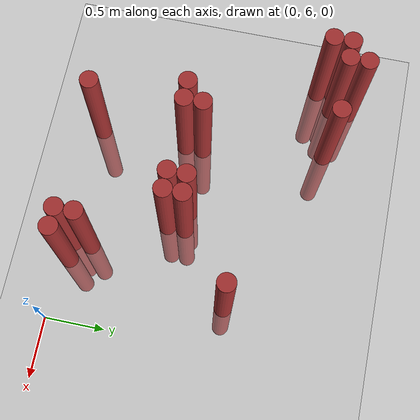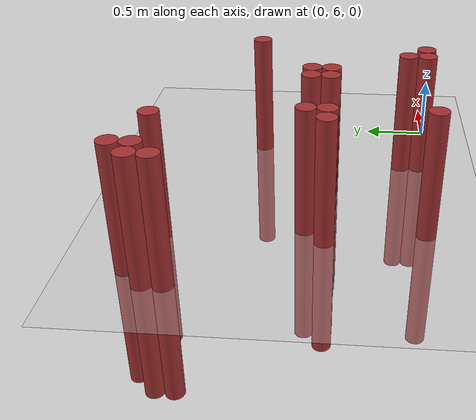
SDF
<sdf version="1.6">
 <world name="default">
  <model name="ground_plane">
   <static>1</static>
   <link name="link">
    <collision name="collision">
     <geometry><plane><normal>0 0 1</normal><size>100 100</size></plane></geometry>
     <surface><friction><ode><mu>100</mu><mu2>50</mu2></ode></friction></surface>
    </collision>
    <visual name="visual">
     <cast_shadows>0</cast_shadows>
     <geometry><plane><normal>0 0 1</normal><size>100 100</size></plane></geometry>
     <material>
      <script><uri>file://media/materials/scripts/gazebo.material</uri><name>Gazebo/Grey</name></script>
     </material>
    </visual>
   </link>
  </model>
  <model name="unit_cylinder_180">
   <static>1</static>
   <pose>-2.475000 7.875000 0.000000 0.000000 0.000000 0.000000</pose>
   <link name="link">
    <inertial>
     <mass>1</mass>
     <inertia><ixx>0.145833</ixx><ixy>0</ixy><ixz>0</ixz><iyy>0.145833</iyy><iyz>0</iyz><izz>0.125</izz></inertia>
    </inertial>
    <collision name="collision">
     <geometry><cylinder><radius>0.075000</radius><length>2</length></cylinder></geometry>
    </collision>
    <visual name="visual">
     <geometry><cylinder><radius>0.075000</radius><length>2</length></cylinder></geometry>
     <material>
      <ambient>0.648000 0.192000 0.192000 1</ambient>
      <diffuse>0.648000 0.192000 0.192000 1</diffuse>
     </material>
     <material>
      <script><name>Gazebo/Grey</name><uri>file://media/materials/scripts/gazebo.material</uri></script>
     </material>
    </visual>
   </link>
  </model>
  <model name="unit_cylinder_181">
   <static>1</static>
   <pose>-2.475000 8.025000 0.000000 0.000000 0.000000 0.000000</pose>
   <link name="link">
    <inertial>
     <mass>1</mass>
     <inertia><ixx>0.145833</ixx><ixy>0</ixy><ixz>0</ixz><iyy>0.145833</iyy><iyz>0</iyz><izz>0.125</izz></inertia>
    </inertial>
    <collision name="collision">
     <geometry><cylinder><radius>0.075000</radius><length>2</length></cylinder></geometry>
    </collision>
    <visual name="visual">
     <geometry><cylinder><radius>0.075000</radius><length>2</length></cylinder></geometry>
     <material>
      <ambient>0.648000 0.192000 0.192000 1</ambient>
      <diffuse>0.648000 0.192000 0.192000 1</diffuse>
     </material>
     <material>
      <script><name>Gazebo/Grey</name><uri>file://media/materials/scripts/gazebo.material</uri></script>
     </material>
    </visual>
   </link>
  </model>
  <model name="unit_cylinder_185">
   <static>1</static>
   <pose>-2.325000 8.025000 0.000000 0.000000 0.000000 0.000000</pose>
   <link name="link">
    <inertial>
     <mass>1</mass>
     <inertia><ixx>0.145833</ixx><ixy>0</ixy><ixz>0</ixz><iyy>0.145833</iyy><iyz>0</iyz><izz>0.125</izz></inertia>
    </inertial>
    <collision name="collision">
     <geometry><cylinder><radius>0.075000</radius><length>2</length></cylinder></geometry>
    </collision>
    <visual name="visual">
     <geometry><cylinder><radius>0.075000</radius><length>2</length></cylinder></geometry>
     <material>
      <ambient>0.648000 0.192000 0.192000 1</ambient>
      <diffuse>0.648000 0.192000 0.192000 1</diffuse>
     </material>
     <material>
      <script><name>Gazebo/Grey</name><uri>file://media/materials/scripts/gazebo.material</uri></script>
     </material>
    </visual>
   </link>
  </model>
  <model name="unit_cylinder_186">
   <static>1</static>
   <pose>-2.325000 8.175000 0.000000 0.000000 0.000000 0.000000</pose>
   <link name="link">
    <inertial>
     <mass>1</mass>
     <inertia><ixx>0.145833</ixx><ixy>0</ixy><ixz>0</ixz><iyy>0.145833</iyy><iyz>0</iyz><izz>0.125</izz></inertia>
    </inertial>
    <collision name="collision">
     <geometry><cylinder><radius>0.075000</radius><length>2</length></cylinder></geometry>
    </collision>
    <visual name="visual">
     <geometry><cylinder><radius>0.075000</radius><length>2</length></cylinder></geometry>
     <material>
      <ambient>0.648000 0.192000 0.192000 1</ambient>
      <diffuse>0.648000 0.192000 0.192000 1</diffuse>
     </material>
     <material>
      <script><name>Gazebo/Grey</name><uri>file://media/materials/scripts/gazebo.material</uri></script>
     </material>
    </visual>
   </link>
  </model>
  <model name="unit_cylinder_198">
   <static>1</static>
   <pose>-1.875000 6.825000 0.000000 0.000000 0.000000 0.000000</pose>
   <link name="link">
    <inertial>
     <mass>1</mass>
     <inertia><ixx>0.145833</ixx><ixy>0</ixy><ixz>0</ixz><iyy>0.145833</iyy><iyz>0</iyz><izz>0.125</izz></inertia>
    </inertial>
    <collision name="collision">
     <geometry><cylinder><radius>0.075000</radius><length>2</length></cylinder></geometry>
    </collision>
    <visual name="visual">
     <geometry><cylinder><radius>0.075000</radius><length>2</length></cylinder></geometry>
     <material>
      <ambient>0.648000 0.192000 0.192000 1</ambient>
      <diffuse>0.648000 0.192000 0.192000 1</diffuse>
     </material>
     <material>
      <script><name>Gazebo/Grey</name><uri>file://media/materials/scripts/gazebo.material</uri></script>
     </material>
    </visual>
   </link>
  </model>
  <model name="unit_cylinder_199">
   <static>1</static>
   <pose>-1.875000 8.025000 0.000000 0.000000 0.000000 0.000000</pose>
   <link name="link">
    <inertial>
     <mass>1</mass>
     <inertia><ixx>0.145833</ixx><ixy>0</ixy><ixz>0</ixz><iyy>0.145833</iyy><iyz>0</iyz><izz>0.125</izz></inertia>
    </inertial>
    <collision name="collision">
     <geometry><cylinder><radius>0.075000</radius><length>2</length></cylinder></geometry>
    </collision>
    <visual name="visual">
     <geometry><cylinder><radius>0.075000</radius><length>2</length></cylinder></geometry>
     <material>
      <ambient>0.648000 0.192000 0.192000 1</ambient>
      <diffuse>0.648000 0.192000 0.192000 1</diffuse>
     </material>
     <material>
      <script><name>Gazebo/Grey</name><uri>file://media/materials/scripts/gazebo.material</uri></script>
     </material>
    </visual>
   </link>
  </model>
  <model name="unit_cylinder_202">
   <static>1</static>
   <pose>-1.725000 6.075000 0.000000 0.000000 0.000000 0.000000</pose>
   <link name="link">
    <inertial>
     <mass>1</mass>
     <inertia><ixx>0.145833</ixx><ixy>0</ixy><ixz>0</ixz><iyy>0.145833</iyy><iyz>0</iyz><izz>0.125</izz></inertia>
    </inertial>
    <collision name="collision">
     <geometry><cylinder><radius>0.075000</radius><length>2</length></cylinder></geometry>
    </collision>
    <visual name="visual">
     <geometry><cylinder><radius>0.075000</radius><length>2</length></cylinder></geometry>
     <material>
      <ambient>0.648000 0.192000 0.192000 1</ambient>
      <diffuse>0.648000 0.192000 0.192000 1</diffuse>
     </material>
     <material>
      <script><name>Gazebo/Grey</name><uri>file://media/materials/scripts/gazebo.material</uri></script>
     </material>
    </visual>
   </link>
  </model>
  <model name="unit_cylinder_203">
   <static>1</static>
   <pose>-1.725000 6.825000 0.000000 0.000000 0.000000 0.000000</pose>
   <link name="link">
    <inertial>
     <mass>1</mass>
     <inertia><ixx>0.145833</ixx><ixy>0</ixy><ixz>0</ixz><iyy>0.145833</iyy><iyz>0</iyz><izz>0.125</izz></inertia>
    </inertial>
    <collision name="collision">
     <geometry><cylinder><radius>0.075000</radius><length>2</length></cylinder></geometry>
    </collision>
    <visual name="visual">
     <geometry><cylinder><radius>0.075000</radius><length>2</length></cylinder></geometry>
     <material>
      <ambient>0.648000 0.192000 0.192000 1</ambient>
      <diffuse>0.648000 0.192000 0.192000 1</diffuse>
     </material>
     <material>
      <script><name>Gazebo/Grey</name><uri>file://media/materials/scripts/gazebo.material</uri></script>
     </material>
    </visual>
   </link>
  </model>
  <model name="unit_cylinder_204">
   <static>1</static>
   <pose>-1.725000 6.975000 0.000000 0.000000 0.000000 0.000000</pose>
   <link name="link">
    <inertial>
     <mass>1</mass>
     <inertia><ixx>0.145833</ixx><ixy>0</ixy><ixz>0</ixz><iyy>0.145833</iyy><iyz>0</iyz><izz>0.125</izz></inertia>
    </inertial>
    <collision name="collision">
     <geometry><cylinder><radius>0.075000</radius><length>2</length></cylinder></geometry>
    </collision>
    <visual name="visual">
     <geometry><cylinder><radius>0.075000</radius><length>2</length></cylinder></geometry>
     <material>
      <ambient>0.648000 0.192000 0.192000 1</ambient>
      <diffuse>0.648000 0.192000 0.192000 1</diffuse>
     </material>
     <material>
      <script><name>Gazebo/Grey</name><uri>file://media/materials/scripts/gazebo.material</uri></script>
     </material>
    </visual>
   </link>
  </model>
  <model name="unit_cylinder_214">
   <static>1</static>
   <pose>-1.125000 6.825000 0.000000 0.000000 0.000000 0.000000</pose>
   <link name="link">
    <inertial>
     <mass>1</mass>
     <inertia><ixx>0.145833</ixx><ixy>0</ixy><ixz>0</ixz><iyy>0.145833</iyy><iyz>0</iyz><izz>0.125</izz></inertia>
    </inertial>
    <collision name="collision">
     <geometry><cylinder><radius>0.075000</radius><length>2</length></cylinder></geometry>
    </collision>
    <visual name="visual">
     <geometry><cylinder><radius>0.075000</radius><length>2</length></cylinder></geometry>
     <material>
      <ambient>0.648000 0.192000 0.192000 1</ambient>
      <diffuse>0.648000 0.192000 0.192000 1</diffuse>
     </material>
     <material>
      <script><name>Gazebo/Grey</name><uri>file://media/materials/scripts/gazebo.material</uri></script>
     </material>
    </visual>
   </link>
  </model>
  <model name="unit_cylinder_215">
   <static>1</static>
   <pose>-1.125000 6.975000 0.000000 0.000000 0.000000 0.000000</pose>
   <link name="link">
    <inertial>
     <mass>1</mass>
     <inertia><ixx>0.145833</ixx><ixy>0</ixy><ixz>0</ixz><iyy>0.145833</iyy><iyz>0</iyz><izz>0.125</izz></inertia>
    </inertial>
    <collision name="collision">
     <geometry><cylinder><radius>0.075000</radius><length>2</length></cylinder></geometry>
    </collision>
    <visual name="visual">
     <geometry><cylinder><radius>0.075000</radius><length>2</length></cylinder></geometry>
     <material>
      <ambient>0.648000 0.192000 0.192000 1</ambient>
      <diffuse>0.648000 0.192000 0.192000 1</diffuse>
     </material>
     <material>
      <script><name>Gazebo/Grey</name><uri>file://media/materials/scripts/gazebo.material</uri></script>
     </material>
    </visual>
   </link>
  </model>
  <model name="unit_cylinder_216">
   <static>1</static>
   <pose>-0.975000 6.825000 0.000000 0.000000 0.000000 0.000000</pose>
   <link name="link">
    <inertial>
     <mass>1</mass>
     <inertia><ixx>0.145833</ixx><ixy>0</ixy><ixz>0</ixz><iyy>0.145833</iyy><iyz>0</iyz><izz>0.125</izz></inertia>
    </inertial>
    <collision name="collision">
     <geometry><cylinder><radius>0.075000</radius><length>2</length></cylinder></geometry>
    </collision>
    <visual name="visual">
     <geometry><cylinder><radius>0.075000</radius><length>2</length></cylinder></geometry>
     <material>
      <ambient>0.648000 0.192000 0.192000 1</ambient>
      <diffuse>0.648000 0.192000 0.192000 1</diffuse>
     </material>
     <material>
      <script><name>Gazebo/Grey</name><uri>file://media/materials/scripts/gazebo.material</uri></script>
     </material>
    </visual>
   </link>
  </model>
  <model name="unit_cylinder_217">
   <static>1</static>
   <pose>-0.975000 6.975000 0.000000 0.000000 0.000000 0.000000</pose>
   <link name="link">
    <inertial>
     <mass>1</mass>
     <inertia><ixx>0.145833</ixx><ixy>0</ixy><ixz>0</ixz><iyy>0.145833</iyy><iyz>0</iyz><izz>0.125</izz></inertia>
    </inertial>
    <collision name="collision">
     <geometry><cylinder><radius>0.075000</radius><length>2</length></cylinder></geometry>
    </collision>
    <visual name="visual">
     <geometry><cylinder><radius>0.075000</radius><length>2</length></cylinder></geometry>
     <material>
      <ambient>0.648000 0.192000 0.192000 1</ambient>
      <diffuse>0.648000 0.192000 0.192000 1</diffuse>
     </material>
     <material>
      <script><name>Gazebo/Grey</name><uri>file://media/materials/scripts/gazebo.material</uri></script>
     </material>
    </visual>
   </link>
  </model>
  <model name="unit_cylinder_219">
   <static>1</static>
   <pose>-0.675000 6.075000 0.000000 0.000000 0.000000 0.000000</pose>
   <link name="link">
    <inertial>
     <mass>1</mass>
     <inertia><ixx>0.145833</ixx><ixy>0</ixy><ixz>0</ixz><iyy>0.145833</iyy><iyz>0</iyz><izz>0.125</izz></inertia>
    </inertial>
    <collision name="collision">
     <geometry><cylinder><radius>0.075000</radius><length>2</length></cylinder></geometry>
    </collision>
    <visual name="visual">
     <geometry><cylinder><radius>0.075000</radius><length>2</length></cylinder></geometry>
     <material>
      <ambient>0.648000 0.192000 0.192000 1</ambient>
      <diffuse>0.648000 0.192000 0.192000 1</diffuse>
     </material>
     <material>
      <script><name>Gazebo/Grey</name><uri>file://media/materials/scripts/gazebo.material</uri></script>
     </material>
    </visual>
   </link>
  </model>
  <model name="unit_cylinder_220">
   <static>1</static>
   <pose>-0.675000 6.225000 0.000000 0.000000 0.000000 0.000000</pose>
   <link name="link">
    <inertial>
     <mass>1</mass>
     <inertia><ixx>0.145833</ixx><ixy>0</ixy><ixz>0</ixz><iyy>0.145833</iyy><iyz>0</iyz><izz>0.125</izz></inertia>
    </inertial>
    <collision name="collision">
     <geometry><cylinder><radius>0.075000</radius><length>2</length></cylinder></geometry>
    </collision>
    <visual name="visual">
     <geometry><cylinder><radius>0.075000</radius><length>2</length></cylinder></geometry>
     <material>
      <ambient>0.648000 0.192000 0.192000 1</ambient>
      <diffuse>0.648000 0.192000 0.192000 1</diffuse>
     </material>
     <material>
      <script><name>Gazebo/Grey</name><uri>file://media/materials/scripts/gazebo.material</uri></script>
     </material>
    </visual>
   </link>
  </model>
  <model name="unit_cylinder_221">
   <static>1</static>
   <pose>-0.525000 6.075000 0.000000 0.000000 0.000000 0.000000</pose>
   <link name="link">
    <inertial>
     <mass>1</mass>
     <inertia><ixx>0.145833</ixx><ixy>0</ixy><ixz>0</ixz><iyy>0.145833</iyy><iyz>0</iyz><izz>0.125</izz></inertia>
    </inertial>
    <collision name="collision">
     <geometry><cylinder><radius>0.075000</radius><length>2</length></cylinder></geometry>
    </collision>
    <visual name="visual">
     <geometry><cylinder><radius>0.075000</radius><length>2</length></cylinder></geometry>
     <material>
      <ambient>0.648000 0.192000 0.192000 1</ambient>
      <diffuse>0.648000 0.192000 0.192000 1</diffuse>
     </material>
     <material>
      <script><name>Gazebo/Grey</name><uri>file://media/materials/scripts/gazebo.material</uri></script>
     </material>
    </visual>
   </link>
  </model>
  <model name="unit_cylinder_223">
   <static>1</static>
   <pose>-0.375000 7.425000 0.000000 0.000000 0.000000 0.000000</pose>
   <link name="link">
    <inertial>
     <mass>1</mass>
     <inertia><ixx>0.145833</ixx><ixy>0</ixy><ixz>0</ixz><iyy>0.145833</iyy><iyz>0</iyz><izz>0.125</izz></inertia>
    </inertial>
    <collision name="collision">
     <geometry><cylinder><radius>0.075000</radius><length>2</length></cylinder></geometry>
    </collision>
    <visual name="visual">
     <geometry><cylinder><radius>0.075000</radius><length>2</length></cylinder></geometry>
     <material>
      <ambient>0.648000 0.192000 0.192000 1</ambient>
      <diffuse>0.648000 0.192000 0.192000 1</diffuse>
     </material>
     <material>
      <script><name>Gazebo/Grey</name><uri>file://media/materials/scripts/gazebo.material</uri></script>
     </material>
    </visual>
   </link>
  </model>
 </world>
</sdf>
